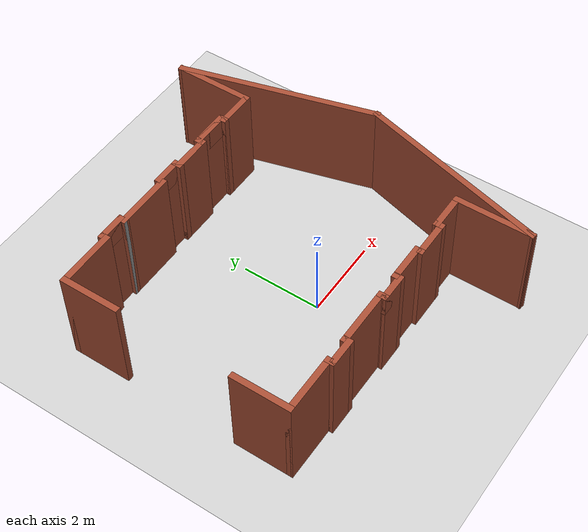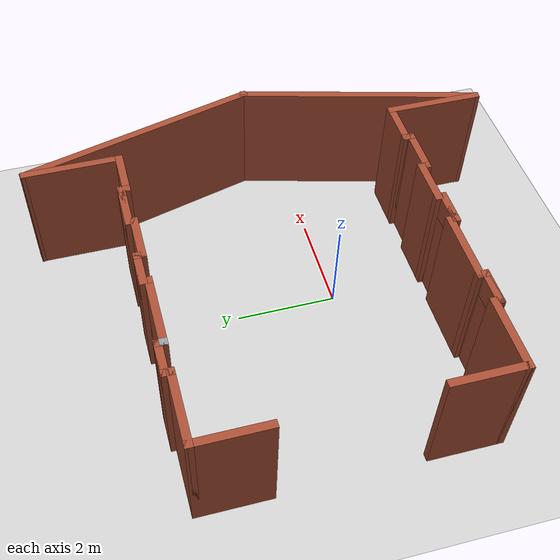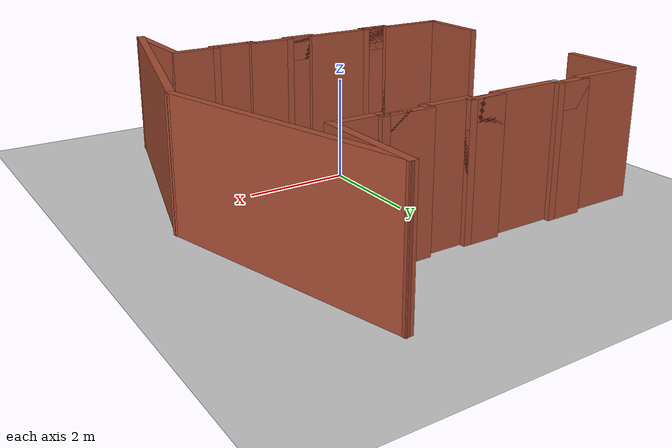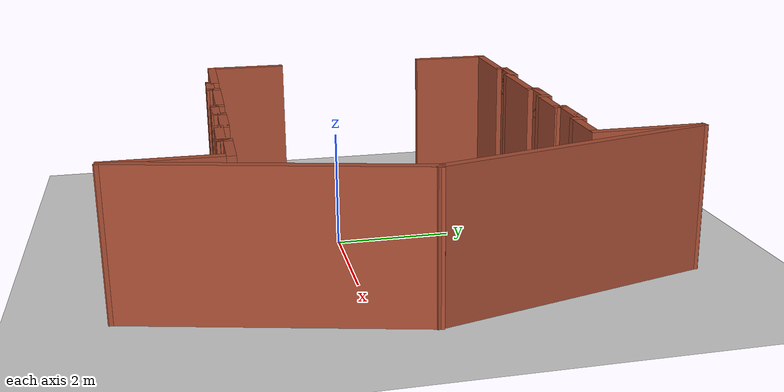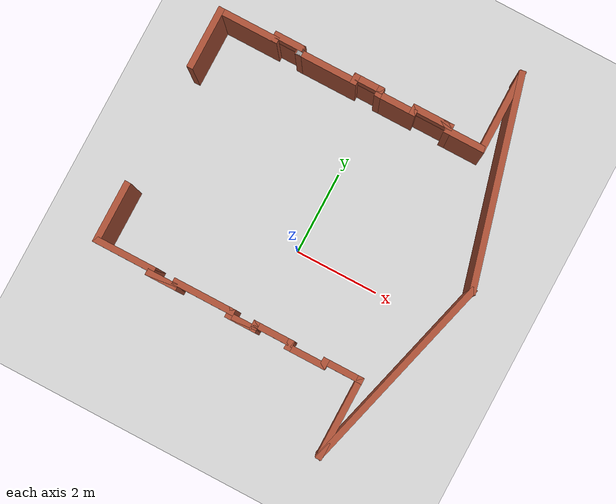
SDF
<sdf version='1.4'>
  <world name='default'>
    <!-- A global light source -->
    <include>
      <uri>model://sun</uri>
    </include>

    <!-- A ground plane -->
    <include>
      <uri>model://ground_plane</uri>
    </include>

    <physics type="ode">
      <real_time_update_rate>1000.0</real_time_update_rate>
      <max_step_size>0.001</max_step_size>
      <real_time_factor>1</real_time_factor>
      <ode>
        <solver>
          <type>quick</type>
          <iters>150</iters>
          <precon_iters>0</precon_iters>
          <sor>1.400000</sor>
          <use_dynamic_moi_rescaling>1</use_dynamic_moi_rescaling>
        </solver>
        <constraints>
          <cfm>0.00001</cfm>
          <erp>0.2</erp>
          <contact_max_correcting_vel>2000.000000</contact_max_correcting_vel>
          <contact_surface_layer>0.01000</contact_surface_layer>
        </constraints>
      </ode>
    </physics>

    <!-- A turtlebot symbol -->
    <include>
      <uri>model://turtlebot3_hall</uri>
    </include>

    <scene>
      <ambient>0.4 0.4 0.4 1</ambient>
      <background>0.7 0.7 0.7 1</background>
      <shadows>true</shadows>
    </scene>

    <gui fullscreen='0'>
      <camera name='user_camera'>
        <pose>0.0 0.0 17.0 0 1.5708 0</pose>
        <view_controller>orbit</view_controller>
      </camera>
    </gui>
  </world>
</sdf>

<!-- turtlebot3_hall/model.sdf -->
<sdf version='1.6'>
  <model name='turtlebot3_hall'>
    <pose frame=''>0.006229 0.907703 0 0 0 -1.57</pose>
    <link name='Wall_100'>
      <collision name='Wall_100_Collision'>
        <geometry>
          <box>
            <size>1.5 0.15 2.5</size>
          </box>
        </geometry>
        <pose frame=''>0 0 1.25 0 -0 0</pose>
      </collision>
      <visual name='Wall_100_Visual'>
        <pose frame=''>0 0 1.25 0 -0 0</pose>
        <geometry>
          <box>
            <size>1.5 0.15 2.5</size>
          </box>
        </geometry>
        <material>
          <script>
            <uri>file://media/materials/scripts/gazebo.material</uri>
            <name>Gazebo/Bricks</name>
          </script>
          <ambient>1 1 1 1</ambient>
        </material>
      </visual>
      <pose frame=''>-2.83474 -1.23606 0 0 0 -1.5708</pose>
    </link>
    <link name='Wall_101'>
      <collision name='Wall_101_Collision'>
        <geometry>
          <box>
            <size>0.25 0.15 2.5</size>
          </box>
        </geometry>
        <pose frame=''>0 0 1.25 0 -0 0</pose>
      </collision>
      <visual name='Wall_101_Visual'>
        <pose frame=''>0 0 1.25 0 -0 0</pose>
        <geometry>
          <box>
            <size>0.25 0.15 2.5</size>
          </box>
        </geometry>
        <material>
          <script>
            <uri>file://media/materials/scripts/gazebo.material</uri>
            <name>Gazebo/Bricks</name>
          </script>
          <ambient>1 1 1 1</ambient>
        </material>
      </visual>
      <pose frame=''>-2.88474 -1.91106 0 0 -0 3.14159</pose>
    </link>
    <link name='Wall_102'>
      <pose frame=''>-2.93474 -2.21106 0 0 0 -1.5708</pose>
      <visual name='Wall_102_Visual_0'>
        <pose frame=''>0 0 1.25 0 -0 0</pose>
        <geometry>
          <box>
            <size>0.75 0.15 2.5</size>
          </box>
        </geometry>
        <material>
          <script>
            <uri>file://media/materials/scripts/gazebo.material</uri>
            <name>Gazebo/Bricks</name>
          </script>
          <ambient>1 1 1 1</ambient>
        </material>
      </visual>
      <collision name='Wall_102_Collision_0'>
        <geometry>
          <box>
            <size>0.75 0.15 2.5</size>
          </box>
        </geometry>
        <pose frame=''>0 0 1.25 0 -0 0</pose>
      </collision>
      <visual name='Wall_102_Visual_1'>
        <pose frame=''>0.374944 0 1.25 0 -0 0</pose>
        <geometry>
          <box>
            <size>0.000113 0.15 2.5</size>
          </box>
        </geometry>
        <material>
          <script>
            <uri>file://media/materials/scripts/gazebo.material</uri>
            <name>Gazebo/Bricks</name>
          </script>
          <ambient>1 1 1 1</ambient>
        </material>
      </visual>
      <collision name='Wall_102_Collision_1'>
        <geometry>
          <box>
            <size>0.000113 0.15 2.5</size>
          </box>
        </geometry>
        <pose frame=''>0.374944 0 1.25 0 -0 0</pose>
      </collision>
      <visual name='Wall_102_Visual_2'>
        <pose frame=''>-5.6e-05 0 2.25 0 -0 0</pose>
        <geometry>
          <box>
            <size>0.749887 0.15 0.5</size>
          </box>
        </geometry>
        <material>
          <script>
            <uri>file://media/materials/scripts/gazebo.material</uri>
            <name>Gazebo/Bricks</name>
          </script>
          <ambient>1 1 1 1</ambient>
        </material>
      </visual>
      <collision name='Wall_102_Collision_2'>
        <geometry>
          <box>
            <size>0.749887 0.15 0.5</size>
          </box>
        </geometry>
        <pose frame=''>-5.6e-05 0 2.25 0 -0 0</pose>
      </collision>
    </link>
    <link name='Wall_103'>
      <collision name='Wall_103_Collision'>
        <geometry>
          <box>
            <size>0.25 0.15 2.5</size>
          </box>
        </geometry>
        <pose frame=''>0 0 1.25 0 -0 0</pose>
      </collision>
      <visual name='Wall_103_Visual'>
        <pose frame=''>0 0 1.25 0 -0 0</pose>
        <geometry>
          <box>
            <size>0.25 0.15 2.5</size>
          </box>
        </geometry>
        <material>
          <script>
            <uri>file://media/materials/scripts/gazebo.material</uri>
            <name>Gazebo/Bricks</name>
          </script>
          <ambient>1 1 1 1</ambient>
        </material>
      </visual>
      <pose frame=''>-2.88474 -2.51106 0 0 -0 0</pose>
    </link>
    <link name='Wall_104'>
      <collision name='Wall_104_Collision'>
        <geometry>
          <box>
            <size>1.5 0.15 2.5</size>
          </box>
        </geometry>
        <pose frame=''>0 0 1.25 0 -0 0</pose>
      </collision>
      <visual name='Wall_104_Visual'>
        <pose frame=''>0 0 1.25 0 -0 0</pose>
        <geometry>
          <box>
            <size>1.5 0.15 2.5</size>
          </box>
        </geometry>
        <material>
          <script>
            <uri>file://media/materials/scripts/gazebo.material</uri>
            <name>Gazebo/Bricks</name>
          </script>
          <ambient>1 1 1 1</ambient>
        </material>
      </visual>
      <pose frame=''>-2.83474 -3.18606 0 0 0 -1.5708</pose>
    </link>
    <link name='Wall_105'>
      <collision name='Wall_105_Collision'>
        <geometry>
          <box>
            <size>1.5 0.15 2.5</size>
          </box>
        </geometry>
        <pose frame=''>0 0 1.25 0 -0 0</pose>
      </collision>
      <visual name='Wall_105_Visual'>
        <pose frame=''>0 0 1.25 0 -0 0</pose>
        <geometry>
          <box>
            <size>1.5 0.15 2.5</size>
          </box>
        </geometry>
        <material>
          <script>
            <uri>file://media/materials/scripts/gazebo.material</uri>
            <name>Gazebo/Bricks</name>
          </script>
          <ambient>1 1 1 1</ambient>
        </material>
      </visual>
      <pose frame=''>-2.15974 -3.86106 0 0 -0 0</pose>
    </link>
    <link name='Wall_29'>
      <collision name='Wall_29_Collision'>
        <geometry>
          <box>
            <size>1.5 0.15 2.5</size>
          </box>
        </geometry>
        <pose frame=''>0 0 1.25 0 -0 0</pose>
      </collision>
      <visual name='Wall_29_Visual'>
        <pose frame=''>0 0 1.25 0 -0 0</pose>
        <geometry>
          <box>
            <size>1.5 0.15 2.5</size>
          </box>
        </geometry>
        <material>
          <script>
            <uri>file://media/materials/scripts/gazebo.material</uri>
            <name>Gazebo/Bricks</name>
          </script>
          <ambient>1 1 1 1</ambient>
        </material>
      </visual>
      <pose frame=''>2.15974 -3.86106 0 0 -0 0</pose>
    </link>
    <link name='Wall_30'>
      <collision name='Wall_30_Collision'>
        <geometry>
          <box>
            <size>1.5 0.15 2.5</size>
          </box>
        </geometry>
        <pose frame=''>0 0 1.25 0 -0 0</pose>
      </collision>
      <visual name='Wall_30_Visual'>
        <pose frame=''>0 0 1.25 0 -0 0</pose>
        <geometry>
          <box>
            <size>1.5 0.15 2.5</size>
          </box>
        </geometry>
        <material>
          <script>
            <uri>file://media/materials/scripts/gazebo.material</uri>
            <name>Gazebo/Bricks</name>
          </script>
          <ambient>1 1 1 1</ambient>
        </material>
      </visual>
      <pose frame=''>2.83474 -3.18606 0 0 -0 1.5708</pose>
    </link>
    <link name='Wall_31'>
      <collision name='Wall_31_Collision'>
        <geometry>
          <box>
            <size>0.25 0.15 2.5</size>
          </box>
        </geometry>
        <pose frame=''>0 0 1.25 0 -0 0</pose>
      </collision>
      <visual name='Wall_31_Visual'>
        <pose frame=''>0 0 1.25 0 -0 0</pose>
        <geometry>
          <box>
            <size>0.25 0.15 2.5</size>
          </box>
        </geometry>
        <material>
          <script>
            <uri>file://media/materials/scripts/gazebo.material</uri>
            <name>Gazebo/Bricks</name>
          </script>
          <ambient>1 1 1 1</ambient>
        </material>
      </visual>
      <pose frame=''>2.88474 -2.51106 0 0 -0 0</pose>
    </link>
    <link name='Wall_32'>
      <pose frame=''>2.93474 -2.21106 0 0 -0 1.5708</pose>
      <visual name='Wall_32_Visual_0'>
        <pose frame=''>0 0 1.25 0 -0 0</pose>
        <geometry>
          <box>
            <size>0.75 0.15 2.5</size>
          </box>
        </geometry>
        <material>
          <script>
            <uri>file://media/materials/scripts/gazebo.material</uri>
            <name>Gazebo/Bricks</name>
          </script>
          <ambient>1 1 1 1</ambient>
        </material>
      </visual>
      <collision name='Wall_32_Collision_0'>
        <geometry>
          <box>
            <size>0.75 0.15 2.5</size>
          </box>
        </geometry>
        <pose frame=''>0 0 1.25 0 -0 0</pose>
      </collision>
      <visual name='Wall_32_Visual_1'>
        <pose frame=''>0.37469 0 1.25 0 -0 0</pose>
        <geometry>
          <box>
            <size>0.00062 0.15 2.5</size>
          </box>
        </geometry>
        <material>
          <script>
            <uri>file://media/materials/scripts/gazebo.material</uri>
            <name>Gazebo/Bricks</name>
          </script>
          <ambient>1 1 1 1</ambient>
        </material>
      </visual>
      <collision name='Wall_32_Collision_1'>
        <geometry>
          <box>
            <size>0.00062 0.15 2.5</size>
          </box>
        </geometry>
        <pose frame=''>0.37469 0 1.25 0 -0 0</pose>
      </collision>
      <visual name='Wall_32_Visual_2'>
        <pose frame=''>-0.00031 0 2.25 0 -0 0</pose>
        <geometry>
          <box>
            <size>0.74938 0.15 0.5</size>
          </box>
        </geometry>
        <material>
          <script>
            <uri>file://media/materials/scripts/gazebo.material</uri>
            <name>Gazebo/Bricks</name>
          </script>
          <ambient>1 1 1 1</ambient>
        </material>
      </visual>
      <collision name='Wall_32_Collision_2'>
        <geometry>
          <box>
            <size>0.74938 0.15 0.5</size>
          </box>
        </geometry>
        <pose frame=''>-0.00031 0 2.25 0 -0 0</pose>
      </collision>
    </link>
    <link name='Wall_33'>
      <collision name='Wall_33_Collision'>
        <geometry>
          <box>
            <size>0.25 0.15 2.5</size>
          </box>
        </geometry>
        <pose frame=''>0 0 1.25 0 -0 0</pose>
      </collision>
      <visual name='Wall_33_Visual'>
        <pose frame=''>0 0 1.25 0 -0 0</pose>
        <geometry>
          <box>
            <size>0.25 0.15 2.5</size>
          </box>
        </geometry>
        <material>
          <script>
            <uri>file://media/materials/scripts/gazebo.material</uri>
            <name>Gazebo/Bricks</name>
          </script>
          <ambient>1 1 1 1</ambient>
        </material>
      </visual>
      <pose frame=''>2.88474 -1.91106 0 0 -0 3.14159</pose>
    </link>
    <link name='Wall_34'>
      <collision name='Wall_34_Collision'>
        <geometry>
          <box>
            <size>1.5 0.15 2.5</size>
          </box>
        </geometry>
        <pose frame=''>0 0 1.25 0 -0 0</pose>
      </collision>
      <visual name='Wall_34_Visual'>
        <pose frame=''>0 0 1.25 0 -0 0</pose>
        <geometry>
          <box>
            <size>1.5 0.15 2.5</size>
          </box>
        </geometry>
        <material>
          <script>
            <uri>file://media/materials/scripts/gazebo.material</uri>
            <name>Gazebo/Bricks</name>
          </script>
          <ambient>1 1 1 1</ambient>
        </material>
      </visual>
      <pose frame=''>2.83474 -1.23606 0 0 -0 1.5708</pose>
    </link>
    <link name='Wall_35'>
      <collision name='Wall_35_Collision'>
        <geometry>
          <box>
            <size>0.25 0.15 2.5</size>
          </box>
        </geometry>
        <pose frame=''>0 0 1.25 0 -0 0</pose>
      </collision>
      <visual name='Wall_35_Visual'>
        <pose frame=''>0 0 1.25 0 -0 0</pose>
        <geometry>
          <box>
            <size>0.25 0.15 2.5</size>
          </box>
        </geometry>
        <material>
          <script>
            <uri>file://media/materials/scripts/gazebo.material</uri>
            <name>Gazebo/Bricks</name>
          </script>
          <ambient>1 1 1 1</ambient>
        </material>
      </visual>
      <pose frame=''>2.88474 -0.561064 0 0 -0 0</pose>
    </link>
    <link name='Wall_36'>
      <pose frame=''>2.93474 -0.261064 0 0 -0 1.5708</pose>
      <visual name='Wall_36_Visual_0'>
        <pose frame=''>0 0 1.25 0 -0 0</pose>
        <geometry>
          <box>
            <size>0.75 0.15 2.5</size>
          </box>
        </geometry>
        <material>
          <script>
            <uri>file://media/materials/scripts/gazebo.material</uri>
            <name>Gazebo/Bricks</name>
          </script>
          <ambient>1 1 1 1</ambient>
        </material>
      </visual>
      <collision name='Wall_36_Collision_0'>
        <geometry>
          <box>
            <size>0.75 0.15 2.5</size>
          </box>
        </geometry>
        <pose frame=''>0 0 1.25 0 -0 0</pose>
      </collision>
      <visual name='Wall_36_Visual_1'>
        <pose frame=''>0.374789 0 1.25 0 -0 0</pose>
        <geometry>
          <box>
            <size>0.000422 0.15 2.5</size>
          </box>
        </geometry>
        <material>
          <script>
            <uri>file://media/materials/scripts/gazebo.material</uri>
            <name>Gazebo/Bricks</name>
          </script>
          <ambient>1 1 1 1</ambient>
        </material>
      </visual>
      <collision name='Wall_36_Collision_1'>
        <geometry>
          <box>
            <size>0.000422 0.15 2.5</size>
          </box>
        </geometry>
        <pose frame=''>0.374789 0 1.25 0 -0 0</pose>
      </collision>
      <visual name='Wall_36_Visual_2'>
        <pose frame=''>-0.000211 0 2.25 0 -0 0</pose>
        <geometry>
          <box>
            <size>0.749578 0.15 0.5</size>
          </box>
        </geometry>
        <material>
          <script>
            <uri>file://media/materials/scripts/gazebo.material</uri>
            <name>Gazebo/Bricks</name>
          </script>
          <ambient>1 1 1 1</ambient>
        </material>
      </visual>
      <collision name='Wall_36_Collision_2'>
        <geometry>
          <box>
            <size>0.749578 0.15 0.5</size>
          </box>
        </geometry>
        <pose frame=''>-0.000211 0 2.25 0 -0 0</pose>
      </collision>
    </link>
    <link name='Wall_37'>
      <collision name='Wall_37_Collision'>
        <geometry>
          <box>
            <size>0.25 0.15 2.5</size>
          </box>
        </geometry>
        <pose frame=''>0 0 1.25 0 -0 0</pose>
      </collision>
      <visual name='Wall_37_Visual'>
        <pose frame=''>0 0 1.25 0 -0 0</pose>
        <geometry>
          <box>
            <size>0.25 0.15 2.5</size>
          </box>
        </geometry>
        <material>
          <script>
            <uri>file://media/materials/scripts/gazebo.material</uri>
            <name>Gazebo/Bricks</name>
          </script>
          <ambient>1 1 1 1</ambient>
        </material>
      </visual>
      <pose frame=''>2.88474 0.038936 0 0 -0 3.14159</pose>
    </link>
    <link name='Wall_38'>
      <collision name='Wall_38_Collision'>
        <geometry>
          <box>
            <size>1 0.15 2.5</size>
          </box>
        </geometry>
        <pose frame=''>0 0 1.25 0 -0 0</pose>
      </collision>
      <visual name='Wall_38_Visual'>
        <pose frame=''>0 0 1.25 0 -0 0</pose>
        <geometry>
          <box>
            <size>1 0.15 2.5</size>
          </box>
        </geometry>
        <material>
          <script>
            <uri>file://media/materials/scripts/gazebo.material</uri>
            <name>Gazebo/Bricks</name>
          </script>
          <ambient>1 1 1 1</ambient>
        </material>
      </visual>
      <pose frame=''>2.83474 0.463936 0 0 -0 1.5708</pose>
    </link>
    <link name='Wall_39'>
      <collision name='Wall_39_Collision'>
        <geometry>
          <box>
            <size>0.25 0.15 2.5</size>
          </box>
        </geometry>
        <pose frame=''>0 0 1.25 0 -0 0</pose>
      </collision>
      <visual name='Wall_39_Visual'>
        <pose frame=''>0 0 1.25 0 -0 0</pose>
        <geometry>
          <box>
            <size>0.25 0.15 2.5</size>
          </box>
        </geometry>
        <material>
          <script>
            <uri>file://media/materials/scripts/gazebo.material</uri>
            <name>Gazebo/Bricks</name>
          </script>
          <ambient>1 1 1 1</ambient>
        </material>
      </visual>
      <pose frame=''>2.88474 0.888936 0 0 -0 0</pose>
    </link>
    <link name='Wall_40'>
      <pose frame=''>2.93474 1.31394 0 0 -0 1.5708</pose>
      <visual name='Wall_40_Visual_0'>
        <pose frame=''>0 0 1.25 0 -0 0</pose>
        <geometry>
          <box>
            <size>1 0.15 2.5</size>
          </box>
        </geometry>
        <material>
          <script>
            <uri>file://media/materials/scripts/gazebo.material</uri>
            <name>Gazebo/Bricks</name>
          </script>
          <ambient>1 1 1 1</ambient>
        </material>
      </visual>
      <collision name='Wall_40_Collision_0'>
        <geometry>
          <box>
            <size>1 0.15 2.5</size>
          </box>
        </geometry>
        <pose frame=''>0 0 1.25 0 -0 0</pose>
      </collision>
      <visual name='Wall_40_Visual_1'>
        <pose frame=''>0.499498 0 1.25 0 -0 0</pose>
        <geometry>
          <box>
            <size>0.001004 0.15 2.5</size>
          </box>
        </geometry>
        <material>
          <script>
            <uri>file://media/materials/scripts/gazebo.material</uri>
            <name>Gazebo/Bricks</name>
          </script>
          <ambient>1 1 1 1</ambient>
        </material>
      </visual>
      <collision name='Wall_40_Collision_1'>
        <geometry>
          <box>
            <size>0.001004 0.15 2.5</size>
          </box>
        </geometry>
        <pose frame=''>0.499498 0 1.25 0 -0 0</pose>
      </collision>
    </link>
    <link name='Wall_41'>
      <collision name='Wall_41_Collision'>
        <geometry>
          <box>
            <size>0.25 0.15 2.5</size>
          </box>
        </geometry>
        <pose frame=''>0 0 1.25 0 -0 0</pose>
      </collision>
      <visual name='Wall_41_Visual'>
        <pose frame=''>0 0 1.25 0 -0 0</pose>
        <geometry>
          <box>
            <size>0.25 0.15 2.5</size>
          </box>
        </geometry>
        <material>
          <script>
            <uri>file://media/materials/scripts/gazebo.material</uri>
            <name>Gazebo/Bricks</name>
          </script>
          <ambient>1 1 1 1</ambient>
        </material>
      </visual>
      <pose frame=''>2.88474 1.73894 0 0 -0 3.14159</pose>
    </link>
    <link name='Wall_42'>
      <collision name='Wall_42_Collision'>
        <geometry>
          <box>
            <size>1 0.15 2.5</size>
          </box>
        </geometry>
        <pose frame=''>0 0 1.25 0 -0 0</pose>
      </collision>
      <visual name='Wall_42_Visual'>
        <pose frame=''>0 0 1.25 0 -0 0</pose>
        <geometry>
          <box>
            <size>1 0.15 2.5</size>
          </box>
        </geometry>
        <material>
          <script>
            <uri>file://media/materials/scripts/gazebo.material</uri>
            <name>Gazebo/Bricks</name>
          </script>
          <ambient>1 1 1 1</ambient>
        </material>
      </visual>
      <pose frame=''>2.83474 2.16394 0 0 -0 1.5708</pose>
    </link>
    <link name='Wall_43'>
      <collision name='Wall_43_Collision'>
        <geometry>
          <box>
            <size>2 0.15 2.5</size>
          </box>
        </geometry>
        <pose frame=''>0 0 1.25 0 -0 0</pose>
      </collision>
      <visual name='Wall_43_Visual'>
        <pose frame=''>0 0 1.25 0 -0 0</pose>
        <geometry>
          <box>
            <size>2 0.15 2.5</size>
          </box>
        </geometry>
        <material>
          <script>
            <uri>file://media/materials/scripts/gazebo.material</uri>
            <name>Gazebo/Bricks</name>
          </script>
          <ambient>1 1 1 1</ambient>
        </material>
      </visual>
      <pose frame=''>3.75974 2.58894 0 0 -0 0</pose>
    </link>
    <link name='Wall_44'>
      <collision name='Wall_44_Collision'>
        <geometry>
          <box>
            <size>5 0.15 2.5</size>
          </box>
        </geometry>
        <pose frame=''>0 0 1.25 0 -0 0</pose>
      </collision>
      <visual name='Wall_44_Visual'>
        <pose frame=''>0 0 1.25 0 -0 0</pose>
        <geometry>
          <box>
            <size>5 0.15 2.5</size>
          </box>
        </geometry>
        <material>
          <script>
            <uri>file://media/materials/scripts/gazebo.material</uri>
            <name>Gazebo/Bricks</name>
          </script>
          <ambient>1 1 1 1</ambient>
        </material>
      </visual>
      <pose frame=''>2.34237 3.21657 0 0 -0 2.87979</pose>
    </link>
    <link name='Wall_45'>
      <collision name='Wall_45_Collision'>
        <geometry>
          <box>
            <size>5 0.15 2.5</size>
          </box>
        </geometry>
        <pose frame=''>0 0 1.25 0 -0 0</pose>
      </collision>
      <visual name='Wall_45_Visual'>
        <pose frame=''>0 0 1.25 0 -0 0</pose>
        <geometry>
          <box>
            <size>5 0.15 2.5</size>
          </box>
        </geometry>
        <material>
          <script>
            <uri>file://media/materials/scripts/gazebo.material</uri>
            <name>Gazebo/Bricks</name>
          </script>
          <ambient>1 1 1 1</ambient>
        </material>
      </visual>
      <pose frame=''>-2.34237 3.21657 0 0 0 -2.87979</pose>
    </link>
    <link name='Wall_46'>
      <collision name='Wall_46_Collision'>
        <geometry>
          <box>
            <size>2 0.15 2.5</size>
          </box>
        </geometry>
        <pose frame=''>0 0 1.25 0 -0 0</pose>
      </collision>
      <visual name='Wall_46_Visual'>
        <pose frame=''>0 0 1.25 0 -0 0</pose>
        <geometry>
          <box>
            <size>2 0.15 2.5</size>
          </box>
        </geometry>
        <material>
          <script>
            <uri>file://media/materials/scripts/gazebo.material</uri>
            <name>Gazebo/Bricks</name>
          </script>
          <ambient>1 1 1 1</ambient>
        </material>
      </visual>
      <pose frame=''>-3.75974 2.58894 0 0 -0 0</pose>
    </link>
    <link name='Wall_47'>
      <collision name='Wall_47_Collision'>
        <geometry>
          <box>
            <size>1 0.15 2.5</size>
          </box>
        </geometry>
        <pose frame=''>0 0 1.25 0 -0 0</pose>
      </collision>
      <visual name='Wall_47_Visual'>
        <pose frame=''>0 0 1.25 0 -0 0</pose>
        <geometry>
          <box>
            <size>1 0.15 2.5</size>
          </box>
        </geometry>
        <material>
          <script>
            <uri>file://media/materials/scripts/gazebo.material</uri>
            <name>Gazebo/Bricks</name>
          </script>
          <ambient>1 1 1 1</ambient>
        </material>
      </visual>
      <pose frame=''>-2.83474 2.16394 0 0 0 -1.5708</pose>
    </link>
    <link name='Wall_48'>
      <collision name='Wall_48_Collision'>
        <geometry>
          <box>
            <size>0.25 0.15 2.5</size>
          </box>
        </geometry>
        <pose frame=''>0 0 1.25 0 -0 0</pose>
      </collision>
      <visual name='Wall_48_Visual'>
        <pose frame=''>0 0 1.25 0 -0 0</pose>
        <geometry>
          <box>
            <size>0.25 0.15 2.5</size>
          </box>
        </geometry>
        <material>
          <script>
            <uri>file://media/materials/scripts/gazebo.material</uri>
            <name>Gazebo/Bricks</name>
          </script>
          <ambient>1 1 1 1</ambient>
        </material>
      </visual>
      <pose frame=''>-2.88474 1.73894 0 0 -0 3.14159</pose>
    </link>
    <link name='Wall_49'>
      <pose frame=''>-2.93474 1.31394 0 0 0 -1.5708</pose>
      <visual name='Wall_49_Visual_0'>
        <pose frame=''>0 0 1.25 0 -0 0</pose>
        <geometry>
          <box>
            <size>1 0.15 2.5</size>
          </box>
        </geometry>
        <material>
          <script>
            <uri>file://media/materials/scripts/gazebo.material</uri>
            <name>Gazebo/Bricks</name>
          </script>
          <ambient>1 1 1 1</ambient>
        </material>
      </visual>
      <collision name='Wall_49_Collision_0'>
        <geometry>
          <box>
            <size>1 0.15 2.5</size>
          </box>
        </geometry>
        <pose frame=''>0 0 1.25 0 -0 0</pose>
      </collision>
      <visual name='Wall_49_Visual_1'>
        <pose frame=''>0.499741 0 1.25 0 -0 0</pose>
        <geometry>
          <box>
            <size>0.000517 0.15 2.5</size>
          </box>
        </geometry>
        <material>
          <script>
            <uri>file://media/materials/scripts/gazebo.material</uri>
            <name>Gazebo/Bricks</name>
          </script>
          <ambient>1 1 1 1</ambient>
        </material>
      </visual>
      <collision name='Wall_49_Collision_1'>
        <geometry>
          <box>
            <size>0.000517 0.15 2.5</size>
          </box>
        </geometry>
        <pose frame=''>0.499741 0 1.25 0 -0 0</pose>
      </collision>
      <visual name='Wall_49_Visual_2'>
        <pose frame=''>-0.000259 0 2.25 0 -0 0</pose>
        <geometry>
          <box>
            <size>0.999483 0.15 0.5</size>
          </box>
        </geometry>
        <material>
          <script>
            <uri>file://media/materials/scripts/gazebo.material</uri>
            <name>Gazebo/Bricks</name>
          </script>
          <ambient>1 1 1 1</ambient>
        </material>
      </visual>
      <collision name='Wall_49_Collision_2'>
        <geometry>
          <box>
            <size>0.999483 0.15 0.5</size>
          </box>
        </geometry>
        <pose frame=''>-0.000259 0 2.25 0 -0 0</pose>
      </collision>
    </link>
    <link name='Wall_56'>
      <collision name='Wall_56_Collision'>
        <geometry>
          <box>
            <size>0.25 0.15 2.5</size>
          </box>
        </geometry>
        <pose frame=''>0 0 1.25 0 -0 0</pose>
      </collision>
      <visual name='Wall_56_Visual'>
        <pose frame=''>0 0 1.25 0 -0 0</pose>
        <geometry>
          <box>
            <size>0.25 0.15 2.5</size>
          </box>
        </geometry>
        <material>
          <script>
            <uri>file://media/materials/scripts/gazebo.material</uri>
            <name>Gazebo/Bricks</name>
          </script>
          <ambient>1 1 1 1</ambient>
        </material>
      </visual>
      <pose frame=''>-2.88474 0.888936 0 0 -0 0</pose>
    </link>
    <link name='Wall_57'>
      <collision name='Wall_57_Collision'>
        <geometry>
          <box>
            <size>1 0.15 2.5</size>
          </box>
        </geometry>
        <pose frame=''>0 0 1.25 0 -0 0</pose>
      </collision>
      <visual name='Wall_57_Visual'>
        <pose frame=''>0 0 1.25 0 -0 0</pose>
        <geometry>
          <box>
            <size>1 0.15 2.5</size>
          </box>
        </geometry>
        <material>
          <script>
            <uri>file://media/materials/scripts/gazebo.material</uri>
            <name>Gazebo/Bricks</name>
          </script>
          <ambient>1 1 1 1</ambient>
        </material>
      </visual>
      <pose frame=''>-2.83474 0.463936 0 0 0 -1.5708</pose>
    </link>
    <link name='Wall_58'>
      <collision name='Wall_58_Collision'>
        <geometry>
          <box>
            <size>0.25 0.15 2.5</size>
          </box>
        </geometry>
        <pose frame=''>0 0 1.25 0 -0 0</pose>
      </collision>
      <visual name='Wall_58_Visual'>
        <pose frame=''>0 0 1.25 0 -0 0</pose>
        <geometry>
          <box>
            <size>0.25 0.15 2.5</size>
          </box>
        </geometry>
        <material>
          <script>
            <uri>file://media/materials/scripts/gazebo.material</uri>
            <name>Gazebo/Bricks</name>
          </script>
          <ambient>1 1 1 1</ambient>
        </material>
      </visual>
      <pose frame=''>-2.88474 0.038936 0 0 -0 3.14159</pose>
    </link>
    <link name='Wall_59'>
      <pose frame=''>-2.93474 -0.261064 0 0 0 -1.5708</pose>
      <visual name='Wall_59_Visual_0'>
        <pose frame=''>0 0 1.25 0 -0 0</pose>
        <geometry>
          <box>
            <size>0.75 0.15 2.5</size>
          </box>
        </geometry>
        <material>
          <script>
            <uri>file://media/materials/scripts/gazebo.material</uri>
            <name>Gazebo/Bricks</name>
          </script>
          <ambient>1 1 1 1</ambient>
        </material>
      </visual>
      <collision name='Wall_59_Collision_0'>
        <geometry>
          <box>
            <size>0.75 0.15 2.5</size>
          </box>
        </geometry>
        <pose frame=''>0 0 1.25 0 -0 0</pose>
      </collision>
      <visual name='Wall_59_Visual_1'>
        <pose frame=''>0.374711 0 1.25 0 -0 0</pose>
        <geometry>
          <box>
            <size>0.000577 0.15 2.5</size>
          </box>
        </geometry>
        <material>
          <script>
            <uri>file://media/materials/scripts/gazebo.material</uri>
            <name>Gazebo/Bricks</name>
          </script>
          <ambient>1 1 1 1</ambient>
        </material>
      </visual>
      <collision name='Wall_59_Collision_1'>
        <geometry>
          <box>
            <size>0.000577 0.15 2.5</size>
          </box>
        </geometry>
        <pose frame=''>0.374711 0 1.25 0 -0 0</pose>
      </collision>
      <visual name='Wall_59_Visual_2'>
        <pose frame=''>-0.000289 0 2.25 0 -0 0</pose>
        <geometry>
          <box>
            <size>0.749423 0.15 0.5</size>
          </box>
        </geometry>
        <material>
          <script>
            <uri>file://media/materials/scripts/gazebo.material</uri>
            <name>Gazebo/Bricks</name>
          </script>
          <ambient>1 1 1 1</ambient>
        </material>
      </visual>
      <collision name='Wall_59_Collision_2'>
        <geometry>
          <box>
            <size>0.749423 0.15 0.5</size>
          </box>
        </geometry>
        <pose frame=''>-0.000289 0 2.25 0 -0 0</pose>
      </collision>
    </link>
    <link name='Wall_71'>
      <collision name='Wall_71_Collision'>
        <geometry>
          <box>
            <size>0.15 0.15 2.5</size>
          </box>
        </geometry>
        <pose frame=''>0 0 1.25 0 -0 0</pose>
      </collision>
      <visual name='Wall_71_Visual'>
        <pose frame=''>0 0 1.25 0 -0 0</pose>
        <geometry>
          <box>
            <size>0.15 0.15 2.5</size>
          </box>
        </geometry>
        <material>
          <script>
            <uri>file://media/materials/scripts/gazebo.material</uri>
            <name>Gazebo/Grey</name>
          </script>
          <ambient>1 1 1 1</ambient>
        </material>
      </visual>
      <pose frame=''>-2.83474 -1.91106 0 0 -0 0</pose>
    </link>
    <link name='Wall_99'>
      <collision name='Wall_99_Collision'>
        <geometry>
          <box>
            <size>0.25 0.15 2.5</size>
          </box>
        </geometry>
        <pose frame=''>0 0 1.25 0 -0 0</pose>
      </collision>
      <visual name='Wall_99_Visual'>
        <pose frame=''>0 0 1.25 0 -0 0</pose>
        <geometry>
          <box>
            <size>0.25 0.15 2.5</size>
          </box>
        </geometry>
        <material>
          <script>
            <uri>file://media/materials/scripts/gazebo.material</uri>
            <name>Gazebo/Bricks</name>
          </script>
          <ambient>1 1 1 1</ambient>
        </material>
      </visual>
      <pose frame=''>-2.88474 -0.561064 0 0 -0 0</pose>
    </link>
    <static>1</static>
  </model>
</sdf>
